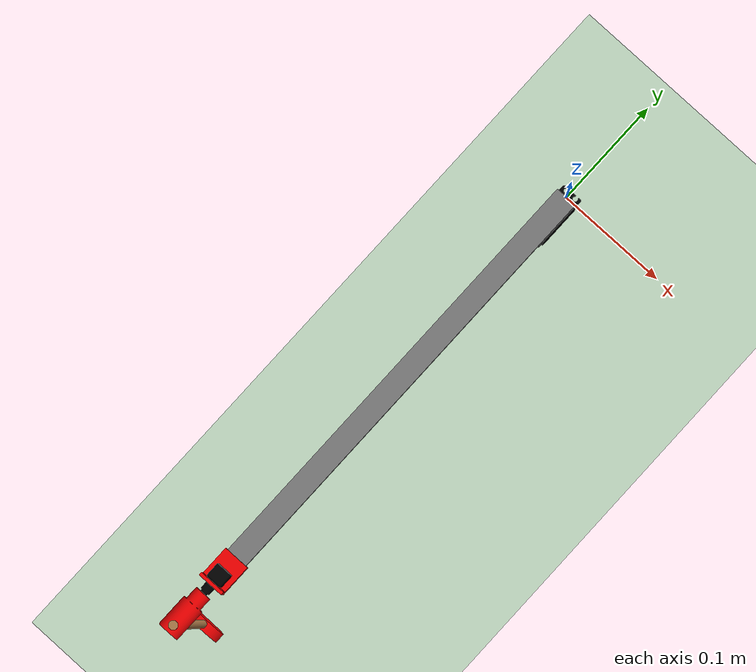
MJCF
<mujoco model="arm3d">
    <compiler inertiafromgeom="true" angle="degree" coordinate="local"
    />
    <option timestep="0.005" gravity="0 0 -9.81" iterations="20" integrator="RK4" />

    <default>
        <geom friction=".1 .1 .1" density="300" margin="0.002" condim="1" contype="0" conaffinity="0"/>
    </default>

    <asset>
        <texture builtin="gradient" height="100" rgb1="1 1 1" rgb2="0 0 0" type="skybox" width="100"/>
        <texture builtin="flat" height="1278" mark="cross" markrgb="1 1 1" name="texgeom" random="0.01" rgb1="0.8 0.6 0.4" rgb2="0.8 0.6 0.4" type="cube" width="127"/>
        <texture builtin="checker" height="100" name="texplane" rgb1="0 0 0" rgb2="0.8 0.8 0.8" type="2d" width="100"/>
        <material name="MatPlane" reflectance="0.5" shininess="1" specular="1" texrepeat="2 2" texture="texplane"/>
        <material name="geom" texture="texgeom" texuniform="true"/>

        <texture file="lightwood.png" type="cube" name="light-wood" />
        <material name="light-wood-mat" texture="light-wood" texrepeat="3 3" specular="0.4" shininess="0.1" />

        <mesh file="arm.stl" scale="0.001 0.001 0.001" />
        <mesh file="HS-488HB.stl" scale="0.001 0.001 0.001" />
        <mesh file="horn.stl" scale="0.001 0.001 0.001" />
        <mesh file="encoder_mount.stl" scale="0.001 0.001 0.001" />
        <mesh file="encoder.stl" scale="0.001 0.001 0.001" />
        <mesh file="pendulum_mount.stl" scale="0.001 0.001 0.001" />
        <mesh file="dowel.stl" scale="0.001 0.001 0.001" />
        <mesh file="pendulum_weight.stl" scale="0.001 0.001 0.001" />
    </asset>

    <worldbody>
        <light cutoff="100" diffuse="1 1 1" dir="-0 0 -1.3" directional="true" exponent="1" pos="0 0 1.3" specular=".1 .1 .1"/>
        <geom conaffinity="1" condim="3" material="MatPlane" name="floor" pos="0 0 -0.500" rgba="0.8 0.9 0.8 1" size="1 1 1" type="plane"/>

        <body name="pendulum_r" pos="0 0 0" euler="0 0 0">
            <geom name="servo" type="mesh" mesh="HS-488HB" pos="0 0 0" condim="1" rgba="0 0 0 1"/>

            <body name="arm" pos="0 0 0">
                <joint name="servo_joint" type="hinge" pos="0 -0.025 0" axis="0 0 1" range="-90.0 90.0" damping="1.0" limited="true" />

                <geom name="arm" type="mesh" mesh="arm" pos="0 0 0" condim="1" mass="0.125"/>
                <geom name="servo_horn" type="mesh" mesh="horn" pos="0 0 0" condim="1"  rgba="0.137 0.408 0.8 1" mass="0.004"/>

                <geom name="encoder_mount" type="mesh" mesh="encoder_mount" pos="0 0 0" rgba="1 0 0 1" mass="0.01"/>
                <geom name="encoder" type="mesh" mesh="encoder" pos="0 0 0" rgba="0 0 0 1" mass="0.017"/>

                <body name="pendulum" pos="0 0 0">
                    <joint name="encoder_joint" type="hinge" pos="0 -0.450 0.018" axis="0 -1 0" limited="false" damping="0.0015" />

                    <geom name="pendulum_coupler" type="mesh" mesh="pendulum_mount" pos="0 0 0"  rgba="1 0 0 1" mass="0.015"/>
                    <geom name="pine_dowel" type="mesh" mesh="dowel" pos="0 0 0" material="light-wood-mat" mass="0.011"/>
                    <geom name="pendulum_weight" type="mesh" mesh="pendulum_weight" pos="0 0 0"  rgba="1 0 0 1"  mass="0.009"/>
                </body>
            </body>

        </body>

    </worldbody>

    <actuator>
        <general joint="servo_joint" ctrlrange="-2.0 2.0"
                 biastype="affine"
                 dynprm="1 0 0" gainprm="6 0 0" biasprm="0 -6 0"
                 ctrllimited="true" name="servo_motor"/>
    </actuator>
    <sensor>
        <jointpos joint="encoder_joint" name="theta" />
        <jointvel joint="encoder_joint" name="angular_velocity" />
        <jointpos joint="servo_joint" name="servo_position" />
        <jointvel joint="servo_joint" name="servo_angular_velocity" />
    </sensor>
</mujoco>
